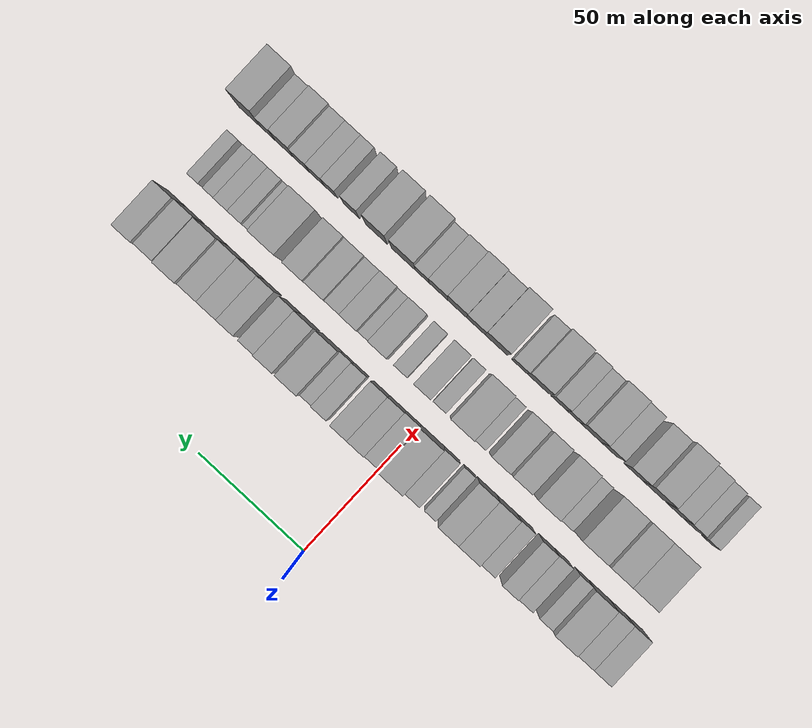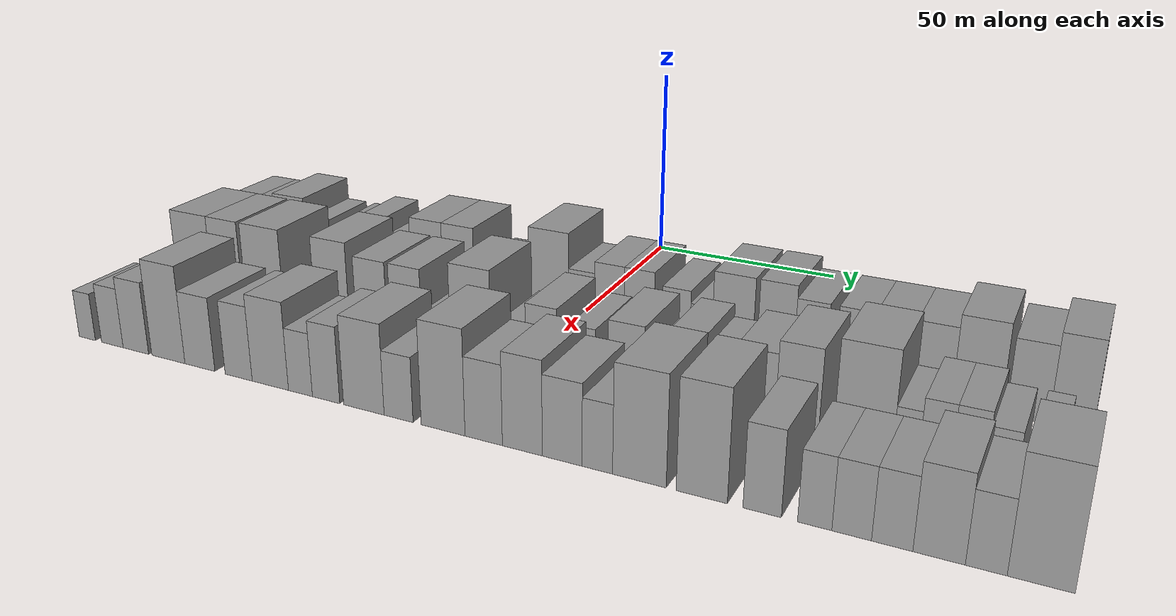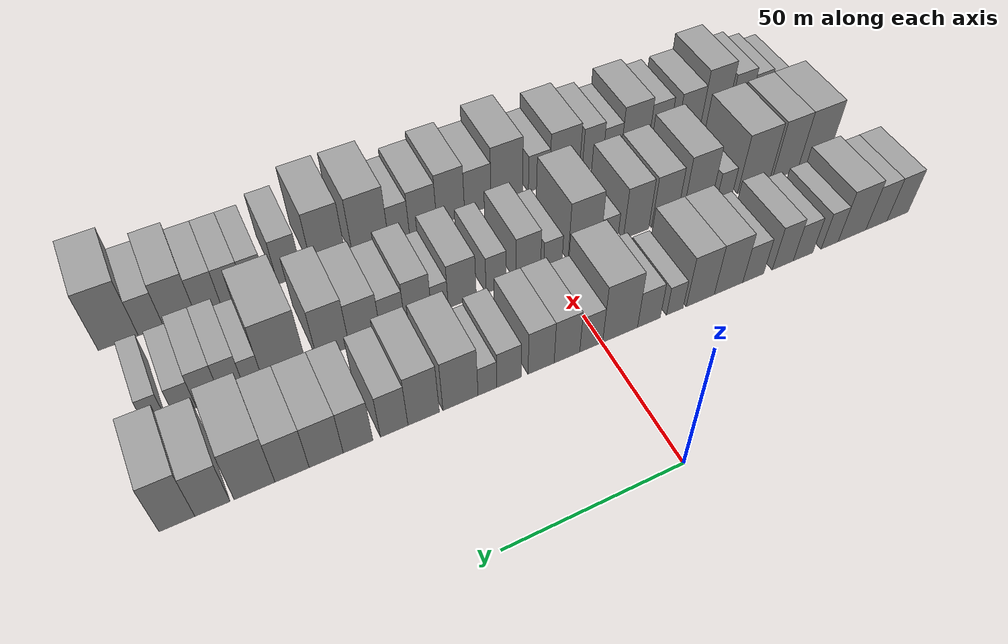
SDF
<sdf version="1.6">
 <world name="default">
  <model name="building_29">
   <static>1</static>
   <pose>50.0000 -101.1419 0 0.000000 0.000000 0.000000</pose>
   <link name="link">
    <pose>0 0 9.00 0 0 0</pose>
    <collision name="collision"><geometry><box><size>20.0000 7.9087 18.0000</size></box></geometry></collision>
    <visual name="visual">
     <cast_shadows>0</cast_shadows>
     <geometry><box><size>20.0000 7.9087 18.0000</size></box></geometry>
     <material>
      <script>
       <uri>model://grey_wall/materials/scripts</uri>
       <uri>model://grey_wall/materials/textures</uri>
       <name>vrc/grey_wall</name>
      </script>
     </material>
    </visual>
   </link>
  </model>
  <model name="building_30">
   <static>1</static>
   <pose>50.0000 -93.2247 0 0.000000 0.000000 0.000000</pose>
   <link name="link">
    <pose>0 0 9.00 0 0 0</pose>
    <collision name="collision"><geometry><box><size>20.0000 7.9257 18.0000</size></box></geometry></collision>
    <visual name="visual">
     <cast_shadows>0</cast_shadows>
     <geometry><box><size>20.0000 7.9257 18.0000</size></box></geometry>
     <material>
      <script>
       <uri>model://grey_wall/materials/scripts</uri>
       <uri>model://grey_wall/materials/textures</uri>
       <name>vrc/grey_wall</name>
      </script>
     </material>
    </visual>
   </link>
  </model>
  <model name="building_31">
   <static>1</static>
   <pose>50.0000 -84.1752 0 0.000000 0.000000 0.000000</pose>
   <link name="link">
    <pose>0 0 10.50 0 0 0</pose>
    <collision name="collision"><geometry><box><size>20.0000 10.1734 21.0000</size></box></geometry></collision>
    <visual name="visual">
     <cast_shadows>0</cast_shadows>
     <geometry><box><size>20.0000 10.1734 21.0000</size></box></geometry>
     <material>
      <script>
       <uri>model://grey_wall/materials/scripts</uri>
       <uri>model://grey_wall/materials/textures</uri>
       <name>vrc/grey_wall</name>
      </script>
     </material>
    </visual>
   </link>
  </model>
  <model name="building_32">
   <static>1</static>
   <pose>50.0000 -76.0340 0 0.000000 0.000000 0.000000</pose>
   <link name="link">
    <pose>0 0 7.50 0 0 0</pose>
    <collision name="collision"><geometry><box><size>20.0000 6.1088 15.0000</size></box></geometry></collision>
    <visual name="visual">
     <cast_shadows>0</cast_shadows>
     <geometry><box><size>20.0000 6.1088 15.0000</size></box></geometry>
     <material>
      <script>
       <uri>model://grey_wall/materials/scripts</uri>
       <uri>model://grey_wall/materials/textures</uri>
       <name>vrc/grey_wall</name>
      </script>
     </material>
    </visual>
   </link>
  </model>
  <model name="building_33">
   <static>1</static>
   <pose>50.0000 -66.5086 0 0.000000 0.000000 0.000000</pose>
   <link name="link">
    <pose>0 0 7.50 0 0 0</pose>
    <collision name="collision"><geometry><box><size>20.0000 6.9421 15.0000</size></box></geometry></collision>
    <visual name="visual">
     <cast_shadows>0</cast_shadows>
     <geometry><box><size>20.0000 6.9421 15.0000</size></box></geometry>
     <material>
      <script>
       <uri>model://grey_wall/materials/scripts</uri>
       <uri>model://grey_wall/materials/textures</uri>
       <name>vrc/grey_wall</name>
      </script>
     </material>
    </visual>
   </link>
  </model>
  <model name="building_34">
   <static>1</static>
   <pose>50.0000 -59.3887 0 0.000000 0.000000 0.000000</pose>
   <link name="link">
    <pose>0 0 9.00 0 0 0</pose>
    <collision name="collision"><geometry><box><size>20.0000 7.2976 18.0000</size></box></geometry></collision>
    <visual name="visual">
     <cast_shadows>0</cast_shadows>
     <geometry><box><size>20.0000 7.2976 18.0000</size></box></geometry>
     <material>
      <script>
       <uri>model://grey_wall/materials/scripts</uri>
       <uri>model://grey_wall/materials/textures</uri>
       <name>vrc/grey_wall</name>
      </script>
     </material>
    </visual>
   </link>
  </model>
  <model name="building_35">
   <static>1</static>
   <pose>50.0000 -49.1687 0 0.000000 0.000000 0.000000</pose>
   <link name="link">
    <pose>0 0 7.50 0 0 0</pose>
    <collision name="collision"><geometry><box><size>20.0000 7.1424 15.0000</size></box></geometry></collision>
    <visual name="visual">
     <cast_shadows>0</cast_shadows>
     <geometry><box><size>20.0000 7.1424 15.0000</size></box></geometry>
     <material>
      <script>
       <uri>model://grey_wall/materials/scripts</uri>
       <uri>model://grey_wall/materials/textures</uri>
       <name>vrc/grey_wall</name>
      </script>
     </material>
    </visual>
   </link>
  </model>
  <model name="building_36">
   <static>1</static>
   <pose>50.0000 -40.7982 0 0.000000 0.000000 0.000000</pose>
   <link name="link">
    <pose>0 0 10.50 0 0 0</pose>
    <collision name="collision"><geometry><box><size>20.0000 9.5987 21.0000</size></box></geometry></collision>
    <visual name="visual">
     <cast_shadows>0</cast_shadows>
     <geometry><box><size>20.0000 9.5987 21.0000</size></box></geometry>
     <material>
      <script>
       <uri>model://grey_wall/materials/scripts</uri>
       <uri>model://grey_wall/materials/textures</uri>
       <name>vrc/grey_wall</name>
      </script>
     </material>
    </visual>
   </link>
  </model>
  <model name="building_37">
   <static>1</static>
   <pose>50.0000 -31.3632 0 0.000000 0.000000 0.000000</pose>
   <link name="link">
    <pose>0 0 10.50 0 0 0</pose>
    <collision name="collision"><geometry><box><size>20.0000 9.2714 21.0000</size></box></geometry></collision>
    <visual name="visual">
     <cast_shadows>0</cast_shadows>
     <geometry><box><size>20.0000 9.2714 21.0000</size></box></geometry>
     <material>
      <script>
       <uri>model://grey_wall/materials/scripts</uri>
       <uri>model://grey_wall/materials/textures</uri>
       <name>vrc/grey_wall</name>
      </script>
     </material>
    </visual>
   </link>
  </model>
  <model name="building_38">
   <static>1</static>
   <pose>50.0000 -23.0225 0 0.000000 0.000000 0.000000</pose>
   <link name="link">
    <pose>0 0 6.00 0 0 0</pose>
    <collision name="collision"><geometry><box><size>20.0000 5.4099 12.0000</size></box></geometry></collision>
    <visual name="visual">
     <cast_shadows>0</cast_shadows>
     <geometry><box><size>20.0000 5.4099 12.0000</size></box></geometry>
     <material>
      <script>
       <uri>model://grey_wall/materials/scripts</uri>
       <uri>model://grey_wall/materials/textures</uri>
       <name>vrc/grey_wall</name>
      </script>
     </material>
    </visual>
   </link>
  </model>
  <model name="building_39">
   <static>1</static>
   <pose>50.0000 -14.6906 0 0.000000 0.000000 0.000000</pose>
   <link name="link">
    <pose>0 0 7.50 0 0 0</pose>
    <collision name="collision"><geometry><box><size>20.0000 7.2540 15.0000</size></box></geometry></collision>
    <visual name="visual">
     <cast_shadows>0</cast_shadows>
     <geometry><box><size>20.0000 7.2540 15.0000</size></box></geometry>
     <material>
      <script>
       <uri>model://grey_wall/materials/scripts</uri>
       <uri>model://grey_wall/materials/textures</uri>
       <name>vrc/grey_wall</name>
      </script>
     </material>
    </visual>
   </link>
  </model>
  <model name="building_40">
   <static>1</static>
   <pose>50.0000 -5.6001 0 0.000000 0.000000 0.000000</pose>
   <link name="link">
    <pose>0 0 12.00 0 0 0</pose>
    <collision name="collision"><geometry><box><size>20.0000 10.9268 24.0000</size></box></geometry></collision>
    <visual name="visual">
     <cast_shadows>0</cast_shadows>
     <geometry><box><size>20.0000 10.9268 24.0000</size></box></geometry>
     <material>
      <script>
       <uri>model://grey_wall/materials/scripts</uri>
       <uri>model://grey_wall/materials/textures</uri>
       <name>vrc/grey_wall</name>
      </script>
     </material>
    </visual>
   </link>
  </model>
  <model name="building_41">
   <static>1</static>
   <pose>50.0000 3.3759 0 0.000000 0.000000 0.000000</pose>
   <link name="link">
    <pose>0 0 7.50 0 0 0</pose>
    <collision name="collision"><geometry><box><size>20.0000 7.0253 15.0000</size></box></geometry></collision>
    <visual name="visual">
     <cast_shadows>0</cast_shadows>
     <geometry><box><size>20.0000 7.0253 15.0000</size></box></geometry>
     <material>
      <script>
       <uri>model://grey_wall/materials/scripts</uri>
       <uri>model://grey_wall/materials/textures</uri>
       <name>vrc/grey_wall</name>
      </script>
     </material>
    </visual>
   </link>
  </model>
  <model name="building_42">
   <static>1</static>
   <pose>50.0000 10.7546 0 0.000000 0.000000 0.000000</pose>
   <link name="link">
    <pose>0 0 9.00 0 0 0</pose>
    <collision name="collision"><geometry><box><size>20.0000 7.7320 18.0000</size></box></geometry></collision>
    <visual name="visual">
     <cast_shadows>0</cast_shadows>
     <geometry><box><size>20.0000 7.7320 18.0000</size></box></geometry>
     <material>
      <script>
       <uri>model://grey_wall/materials/scripts</uri>
       <uri>model://grey_wall/materials/textures</uri>
       <name>vrc/grey_wall</name>
      </script>
     </material>
    </visual>
   </link>
  </model>
  <model name="building_43">
   <static>1</static>
   <pose>50.0000 18.4982 0 0.000000 0.000000 0.000000</pose>
   <link name="link">
    <pose>0 0 9.00 0 0 0</pose>
    <collision name="collision"><geometry><box><size>20.0000 7.7552 18.0000</size></box></geometry></collision>
    <visual name="visual">
     <cast_shadows>0</cast_shadows>
     <geometry><box><size>20.0000 7.7552 18.0000</size></box></geometry>
     <material>
      <script>
       <uri>model://grey_wall/materials/scripts</uri>
       <uri>model://grey_wall/materials/textures</uri>
       <name>vrc/grey_wall</name>
      </script>
     </material>
    </visual>
   </link>
  </model>
  <model name="building_44">
   <static>1</static>
   <pose>50.0000 27.9174 0 0.000000 0.000000 0.000000</pose>
   <link name="link">
    <pose>0 0 7.50 0 0 0</pose>
    <collision name="collision"><geometry><box><size>20.0000 7.0834 15.0000</size></box></geometry></collision>
    <visual name="visual">
     <cast_shadows>0</cast_shadows>
     <geometry><box><size>20.0000 7.0834 15.0000</size></box></geometry>
     <material>
      <script>
       <uri>model://grey_wall/materials/scripts</uri>
       <uri>model://grey_wall/materials/textures</uri>
       <name>vrc/grey_wall</name>
      </script>
     </material>
    </visual>
   </link>
  </model>
  <model name="building_45">
   <static>1</static>
   <pose>50.0000 34.1626 0 0.000000 0.000000 0.000000</pose>
   <link name="link">
    <pose>0 0 6.00 0 0 0</pose>
    <collision name="collision"><geometry><box><size>20.0000 5.4071 12.0000</size></box></geometry></collision>
    <visual name="visual">
     <cast_shadows>0</cast_shadows>
     <geometry><box><size>20.0000 5.4071 12.0000</size></box></geometry>
     <material>
      <script>
       <uri>model://grey_wall/materials/scripts</uri>
       <uri>model://grey_wall/materials/textures</uri>
       <name>vrc/grey_wall</name>
      </script>
     </material>
    </visual>
   </link>
  </model>
  <model name="building_46">
   <static>1</static>
   <pose>50.0000 41.8215 0 0.000000 0.000000 0.000000</pose>
   <link name="link">
    <pose>0 0 10.50 0 0 0</pose>
    <collision name="collision"><geometry><box><size>20.0000 9.9106 21.0000</size></box></geometry></collision>
    <visual name="visual">
     <cast_shadows>0</cast_shadows>
     <geometry><box><size>20.0000 9.9106 21.0000</size></box></geometry>
     <material>
      <script>
       <uri>model://grey_wall/materials/scripts</uri>
       <uri>model://grey_wall/materials/textures</uri>
       <name>vrc/grey_wall</name>
      </script>
     </material>
    </visual>
   </link>
  </model>
  <model name="building_47">
   <static>1</static>
   <pose>50.0000 52.1036 0 0.000000 0.000000 0.000000</pose>
   <link name="link">
    <pose>0 0 10.50 0 0 0</pose>
    <collision name="collision"><geometry><box><size>20.0000 8.6536 21.0000</size></box></geometry></collision>
    <visual name="visual">
     <cast_shadows>0</cast_shadows>
     <geometry><box><size>20.0000 8.6536 21.0000</size></box></geometry>
     <material>
      <script>
       <uri>model://grey_wall/materials/scripts</uri>
       <uri>model://grey_wall/materials/textures</uri>
       <name>vrc/grey_wall</name>
      </script>
     </material>
    </visual>
   </link>
  </model>
  <model name="building_48">
   <static>1</static>
   <pose>50.0000 60.1718 0 0.000000 0.000000 0.000000</pose>
   <link name="link">
    <pose>0 0 9.00 0 0 0</pose>
    <collision name="collision"><geometry><box><size>20.0000 7.4828 18.0000</size></box></geometry></collision>
    <visual name="visual">
     <cast_shadows>0</cast_shadows>
     <geometry><box><size>20.0000 7.4828 18.0000</size></box></geometry>
     <material>
      <script>
       <uri>model://grey_wall/materials/scripts</uri>
       <uri>model://grey_wall/materials/textures</uri>
       <name>vrc/grey_wall</name>
      </script>
     </material>
    </visual>
   </link>
  </model>
  <model name="building_49">
   <static>1</static>
   <pose>50.0000 69.8449 0 0.000000 0.000000 0.000000</pose>
   <link name="link">
    <pose>0 0 9.00 0 0 0</pose>
    <collision name="collision"><geometry><box><size>20.0000 7.8635 18.0000</size></box></geometry></collision>
    <visual name="visual">
     <cast_shadows>0</cast_shadows>
     <geometry><box><size>20.0000 7.8635 18.0000</size></box></geometry>
     <material>
      <script>
       <uri>model://grey_wall/materials/scripts</uri>
       <uri>model://grey_wall/materials/textures</uri>
       <name>vrc/grey_wall</name>
      </script>
     </material>
    </visual>
   </link>
  </model>
  <model name="building_50">
   <static>1</static>
   <pose>50.0000 78.2156 0 0.000000 0.000000 0.000000</pose>
   <link name="link">
    <pose>0 0 9.00 0 0 0</pose>
    <collision name="collision"><geometry><box><size>20.0000 8.8777 18.0000</size></box></geometry></collision>
    <visual name="visual">
     <cast_shadows>0</cast_shadows>
     <geometry><box><size>20.0000 8.8777 18.0000</size></box></geometry>
     <material>
      <script>
       <uri>model://grey_wall/materials/scripts</uri>
       <uri>model://grey_wall/materials/textures</uri>
       <name>vrc/grey_wall</name>
      </script>
     </material>
    </visual>
   </link>
  </model>
  <model name="building_51">
   <static>1</static>
   <pose>50.0000 87.0065 0 0.000000 0.000000 0.000000</pose>
   <link name="link">
    <pose>0 0 9.00 0 0 0</pose>
    <collision name="collision"><geometry><box><size>20.0000 8.7040 18.0000</size></box></geometry></collision>
    <visual name="visual">
     <cast_shadows>0</cast_shadows>
     <geometry><box><size>20.0000 8.7040 18.0000</size></box></geometry>
     <material>
      <script>
       <uri>model://grey_wall/materials/scripts</uri>
       <uri>model://grey_wall/materials/textures</uri>
       <name>vrc/grey_wall</name>
      </script>
     </material>
    </visual>
   </link>
  </model>
  <model name="building_52">
   <static>1</static>
   <pose>50.0000 96.4628 0 0.000000 0.000000 0.000000</pose>
   <link name="link">
    <pose>0 0 10.50 0 0 0</pose>
    <collision name="collision"><geometry><box><size>20.0000 10.2087 21.0000</size></box></geometry></collision>
    <visual name="visual">
     <cast_shadows>0</cast_shadows>
     <geometry><box><size>20.0000 10.2087 21.0000</size></box></geometry>
     <material>
      <script>
       <uri>model://grey_wall/materials/scripts</uri>
       <uri>model://grey_wall/materials/textures</uri>
       <name>vrc/grey_wall</name>
      </script>
     </material>
    </visual>
   </link>
  </model>
  <model name="building_53">
   <static>1</static>
   <pose>50.0000 106.8379 0 0.000000 0.000000 0.000000</pose>
   <link name="link">
    <pose>0 0 9.00 0 0 0</pose>
    <collision name="collision"><geometry><box><size>20.0000 8.5415 18.0000</size></box></geometry></collision>
    <visual name="visual">
     <cast_shadows>0</cast_shadows>
     <geometry><box><size>20.0000 8.5415 18.0000</size></box></geometry>
     <material>
      <script>
       <uri>model://grey_wall/materials/scripts</uri>
       <uri>model://grey_wall/materials/textures</uri>
       <name>vrc/grey_wall</name>
      </script>
     </material>
    </visual>
   </link>
  </model>
  <model name="building_54">
   <static>1</static>
   <pose>50.0000 115.3977 0 0.000000 0.000000 0.000000</pose>
   <link name="link">
    <pose>0 0 10.50 0 0 0</pose>
    <collision name="collision"><geometry><box><size>20.0000 8.5783 21.0000</size></box></geometry></collision>
    <visual name="visual">
     <cast_shadows>0</cast_shadows>
     <geometry><box><size>20.0000 8.5783 21.0000</size></box></geometry>
     <material>
      <script>
       <uri>model://grey_wall/materials/scripts</uri>
       <uri>model://grey_wall/materials/textures</uri>
       <name>vrc/grey_wall</name>
      </script>
     </material>
    </visual>
   </link>
  </model>
  <model name="building_103">
   <static>1</static>
   <pose>79.0000 -92.2201 0 0.000000 0.000000 0.000000</pose>
   <link name="link">
    <pose>0 0 12.00 0 0 0</pose>
    <collision name="collision"><geometry><box><size>20.0000 11.5859 24.0000</size></box></geometry></collision>
    <visual name="visual">
     <cast_shadows>0</cast_shadows>
     <geometry><box><size>20.0000 11.5859 24.0000</size></box></geometry>
     <material>
      <script>
       <uri>model://grey_wall/materials/scripts</uri>
       <uri>model://grey_wall/materials/textures</uri>
       <name>vrc/grey_wall</name>
      </script>
     </material>
    </visual>
   </link>
  </model>
  <model name="building_104">
   <static>1</static>
   <pose>79.0000 -81.6026 0 0.000000 0.000000 0.000000</pose>
   <link name="link">
    <pose>0 0 12.00 0 0 0</pose>
    <collision name="collision"><geometry><box><size>20.0000 9.6491 24.0000</size></box></geometry></collision>
    <visual name="visual">
     <cast_shadows>0</cast_shadows>
     <geometry><box><size>20.0000 9.6491 24.0000</size></box></geometry>
     <material>
      <script>
       <uri>model://grey_wall/materials/scripts</uri>
       <uri>model://grey_wall/materials/textures</uri>
       <name>vrc/grey_wall</name>
      </script>
     </material>
    </visual>
   </link>
  </model>
  <model name="building_105">
   <static>1</static>
   <pose>79.0000 -69.8841 0 0.000000 0.000000 0.000000</pose>
   <link name="link">
    <pose>0 0 12.00 0 0 0</pose>
    <collision name="collision"><geometry><box><size>20.0000 11.7879 24.0000</size></box></geometry></collision>
    <visual name="visual">
     <cast_shadows>0</cast_shadows>
     <geometry><box><size>20.0000 11.7879 24.0000</size></box></geometry>
     <material>
      <script>
       <uri>model://grey_wall/materials/scripts</uri>
       <uri>model://grey_wall/materials/textures</uri>
       <name>vrc/grey_wall</name>
      </script>
     </material>
    </visual>
   </link>
  </model>
  <model name="building_106">
   <static>1</static>
   <pose>79.0000 -59.1848 0 0.000000 0.000000 0.000000</pose>
   <link name="link">
    <pose>0 0 6.00 0 0 0</pose>
    <collision name="collision"><geometry><box><size>20.0000 5.6108 12.0000</size></box></geometry></collision>
    <visual name="visual">
     <cast_shadows>0</cast_shadows>
     <geometry><box><size>20.0000 5.6108 12.0000</size></box></geometry>
     <material>
      <script>
       <uri>model://grey_wall/materials/scripts</uri>
       <uri>model://grey_wall/materials/textures</uri>
       <name>vrc/grey_wall</name>
      </script>
     </material>
    </visual>
   </link>
  </model>
  <model name="building_107">
   <static>1</static>
   <pose>79.0000 -49.3577 0 0.000000 0.000000 0.000000</pose>
   <link name="link">
    <pose>0 0 12.00 0 0 0</pose>
    <collision name="collision"><geometry><box><size>20.0000 10.0433 24.0000</size></box></geometry></collision>
    <visual name="visual">
     <cast_shadows>0</cast_shadows>
     <geometry><box><size>20.0000 10.0433 24.0000</size></box></geometry>
     <material>
      <script>
       <uri>model://grey_wall/materials/scripts</uri>
       <uri>model://grey_wall/materials/textures</uri>
       <name>vrc/grey_wall</name>
      </script>
     </material>
    </visual>
   </link>
  </model>
  <model name="building_108">
   <static>1</static>
   <pose>79.0000 -37.9018 0 0.000000 0.000000 0.000000</pose>
   <link name="link">
    <pose>0 0 10.50 0 0 0</pose>
    <collision name="collision"><geometry><box><size>20.0000 8.8684 21.0000</size></box></geometry></collision>
    <visual name="visual">
     <cast_shadows>0</cast_shadows>
     <geometry><box><size>20.0000 8.8684 21.0000</size></box></geometry>
     <material>
      <script>
       <uri>model://grey_wall/materials/scripts</uri>
       <uri>model://grey_wall/materials/textures</uri>
       <name>vrc/grey_wall</name>
      </script>
     </material>
    </visual>
   </link>
  </model>
  <model name="building_109">
   <static>1</static>
   <pose>79.0000 -28.1540 0 0.000000 0.000000 0.000000</pose>
   <link name="link">
    <pose>0 0 10.50 0 0 0</pose>
    <collision name="collision"><geometry><box><size>20.0000 8.6272 21.0000</size></box></geometry></collision>
    <visual name="visual">
     <cast_shadows>0</cast_shadows>
     <geometry><box><size>20.0000 8.6272 21.0000</size></box></geometry>
     <material>
      <script>
       <uri>model://grey_wall/materials/scripts</uri>
       <uri>model://grey_wall/materials/textures</uri>
       <name>vrc/grey_wall</name>
      </script>
     </material>
    </visual>
   </link>
  </model>
  <model name="building_110">
   <static>1</static>
   <pose>79.0000 -18.9715 0 0.000000 0.000000 0.000000</pose>
   <link name="link">
    <pose>0 0 6.00 0 0 0</pose>
    <collision name="collision"><geometry><box><size>20.0000 5.7377 12.0000</size></box></geometry></collision>
    <visual name="visual">
     <cast_shadows>0</cast_shadows>
     <geometry><box><size>20.0000 5.7377 12.0000</size></box></geometry>
     <material>
      <script>
       <uri>model://grey_wall/materials/scripts</uri>
       <uri>model://grey_wall/materials/textures</uri>
       <name>vrc/grey_wall</name>
      </script>
     </material>
    </visual>
   </link>
  </model>
  <model name="building_111">
   <static>1</static>
   <pose>79.0000 -10.7910 0 0.000000 0.000000 0.000000</pose>
   <link name="link">
    <pose>0 0 12.00 0 0 0</pose>
    <collision name="collision"><geometry><box><size>20.0000 10.6233 24.0000</size></box></geometry></collision>
    <visual name="visual">
     <cast_shadows>0</cast_shadows>
     <geometry><box><size>20.0000 10.6233 24.0000</size></box></geometry>
     <material>
      <script>
       <uri>model://grey_wall/materials/scripts</uri>
       <uri>model://grey_wall/materials/textures</uri>
       <name>vrc/grey_wall</name>
      </script>
     </material>
    </visual>
   </link>
  </model>
  <model name="building_112">
   <static>1</static>
   <pose>79.0000 -0.5046 0 0.000000 0.000000 0.000000</pose>
   <link name="link">
    <pose>0 0 6.00 0 0 0</pose>
    <collision name="collision"><geometry><box><size>20.0000 5.9496 12.0000</size></box></geometry></collision>
    <visual name="visual">
     <cast_shadows>0</cast_shadows>
     <geometry><box><size>20.0000 5.9496 12.0000</size></box></geometry>
     <material>
      <script>
       <uri>model://grey_wall/materials/scripts</uri>
       <uri>model://grey_wall/materials/textures</uri>
       <name>vrc/grey_wall</name>
      </script>
     </material>
    </visual>
   </link>
  </model>
  <model name="building_113">
   <static>1</static>
   <pose>79.0000 7.3682 0 0.000000 0.000000 0.000000</pose>
   <link name="link">
    <pose>0 0 9.00 0 0 0</pose>
    <collision name="collision"><geometry><box><size>20.0000 7.7960 18.0000</size></box></geometry></collision>
    <visual name="visual">
     <cast_shadows>0</cast_shadows>
     <geometry><box><size>20.0000 7.7960 18.0000</size></box></geometry>
     <material>
      <script>
       <uri>model://grey_wall/materials/scripts</uri>
       <uri>model://grey_wall/materials/textures</uri>
       <name>vrc/grey_wall</name>
      </script>
     </material>
    </visual>
   </link>
  </model>
  <model name="building_114">
   <static>1</static>
   <pose>79.0000 17.4192 0 0.000000 0.000000 0.000000</pose>
   <link name="link">
    <pose>0 0 7.50 0 0 0</pose>
    <collision name="collision"><geometry><box><size>20.0000 6.3060 15.0000</size></box></geometry></collision>
    <visual name="visual">
     <cast_shadows>0</cast_shadows>
     <geometry><box><size>20.0000 6.3060 15.0000</size></box></geometry>
     <material>
      <script>
       <uri>model://grey_wall/materials/scripts</uri>
       <uri>model://grey_wall/materials/textures</uri>
       <name>vrc/grey_wall</name>
      </script>
     </material>
    </visual>
   </link>
  </model>
  <model name="building_115">
   <static>1</static>
   <pose>79.0000 27.8315 0 0.000000 0.000000 0.000000</pose>
   <link name="link">
    <pose>0 0 9.00 0 0 0</pose>
    <collision name="collision"><geometry><box><size>20.0000 8.5186 18.0000</size></box></geometry></collision>
    <visual name="visual">
     <cast_shadows>0</cast_shadows>
     <geometry><box><size>20.0000 8.5186 18.0000</size></box></geometry>
     <material>
      <script>
       <uri>model://grey_wall/materials/scripts</uri>
       <uri>model://grey_wall/materials/textures</uri>
       <name>vrc/grey_wall</name>
      </script>
     </material>
    </visual>
   </link>
  </model>
  <model name="building_116">
   <static>1</static>
   <pose>79.0000 34.6011 0 0.000000 0.000000 0.000000</pose>
   <link name="link">
    <pose>0 0 6.00 0 0 0</pose>
    <collision name="collision"><geometry><box><size>20.0000 5.0207 12.0000</size></box></geometry></collision>
    <visual name="visual">
     <cast_shadows>0</cast_shadows>
     <geometry><box><size>20.0000 5.0207 12.0000</size></box></geometry>
     <material>
      <script>
       <uri>model://grey_wall/materials/scripts</uri>
       <uri>model://grey_wall/materials/textures</uri>
       <name>vrc/grey_wall</name>
      </script>
     </material>
    </visual>
   </link>
  </model>
  <model name="building_117">
   <static>1</static>
   <pose>79.0000 41.0628 0 0.000000 0.000000 0.000000</pose>
   <link name="link">
    <pose>0 0 9.00 0 0 0</pose>
    <collision name="collision"><geometry><box><size>20.0000 7.9028 18.0000</size></box></geometry></collision>
    <visual name="visual">
     <cast_shadows>0</cast_shadows>
     <geometry><box><size>20.0000 7.9028 18.0000</size></box></geometry>
     <material>
      <script>
       <uri>model://grey_wall/materials/scripts</uri>
       <uri>model://grey_wall/materials/textures</uri>
       <name>vrc/grey_wall</name>
      </script>
     </material>
    </visual>
   </link>
  </model>
  <model name="building_118">
   <static>1</static>
   <pose>79.0000 48.5735 0 0.000000 0.000000 0.000000</pose>
   <link name="link">
    <pose>0 0 7.50 0 0 0</pose>
    <collision name="collision"><geometry><box><size>20.0000 7.1185 15.0000</size></box></geometry></collision>
    <visual name="visual">
     <cast_shadows>0</cast_shadows>
     <geometry><box><size>20.0000 7.1185 15.0000</size></box></geometry>
     <material>
      <script>
       <uri>model://grey_wall/materials/scripts</uri>
       <uri>model://grey_wall/materials/textures</uri>
       <name>vrc/grey_wall</name>
      </script>
     </material>
    </visual>
   </link>
  </model>
  <model name="building_119">
   <static>1</static>
   <pose>79.0000 56.6145 0 0.000000 0.000000 0.000000</pose>
   <link name="link">
    <pose>0 0 9.00 0 0 0</pose>
    <collision name="collision"><geometry><box><size>20.0000 8.9637 18.0000</size></box></geometry></collision>
    <visual name="visual">
     <cast_shadows>0</cast_shadows>
     <geometry><box><size>20.0000 8.9637 18.0000</size></box></geometry>
     <material>
      <script>
       <uri>model://grey_wall/materials/scripts</uri>
       <uri>model://grey_wall/materials/textures</uri>
       <name>vrc/grey_wall</name>
      </script>
     </material>
    </visual>
   </link>
  </model>
  <model name="building_120">
   <static>1</static>
   <pose>79.0000 65.6613 0 0.000000 0.000000 0.000000</pose>
   <link name="link">
    <pose>0 0 10.50 0 0 0</pose>
    <collision name="collision"><geometry><box><size>20.0000 9.1299 21.0000</size></box></geometry></collision>
    <visual name="visual">
     <cast_shadows>0</cast_shadows>
     <geometry><box><size>20.0000 9.1299 21.0000</size></box></geometry>
     <material>
      <script>
       <uri>model://grey_wall/materials/scripts</uri>
       <uri>model://grey_wall/materials/textures</uri>
       <name>vrc/grey_wall</name>
      </script>
     </material>
    </visual>
   </link>
  </model>
  <model name="building_121">
   <static>1</static>
   <pose>79.0000 79.1402 0 0.000000 0.000000 0.000000</pose>
   <link name="link">
    <pose>0 0 12.00 0 0 0</pose>
    <collision name="collision"><geometry><box><size>20.0000 11.8278 24.0000</size></box></geometry></collision>
    <visual name="visual">
     <cast_shadows>0</cast_shadows>
     <geometry><box><size>20.0000 11.8278 24.0000</size></box></geometry>
     <material>
      <script>
       <uri>model://grey_wall/materials/scripts</uri>
       <uri>model://grey_wall/materials/textures</uri>
       <name>vrc/grey_wall</name>
      </script>
     </material>
    </visual>
   </link>
  </model>
  <model name="building_122">
   <static>1</static>
   <pose>79.0000 87.5717 0 0.000000 0.000000 0.000000</pose>
   <link name="link">
    <pose>0 0 6.00 0 0 0</pose>
    <collision name="collision"><geometry><box><size>20.0000 5.0352 12.0000</size></box></geometry></collision>
    <visual name="visual">
     <cast_shadows>0</cast_shadows>
     <geometry><box><size>20.0000 5.0352 12.0000</size></box></geometry>
     <material>
      <script>
       <uri>model://grey_wall/materials/scripts</uri>
       <uri>model://grey_wall/materials/textures</uri>
       <name>vrc/grey_wall</name>
      </script>
     </material>
    </visual>
   </link>
  </model>
  <model name="building_123">
   <static>1</static>
   <pose>79.0000 93.2001 0 0.000000 0.000000 0.000000</pose>
   <link name="link">
    <pose>0 0 7.50 0 0 0</pose>
    <collision name="collision"><geometry><box><size>20.0000 6.2215 15.0000</size></box></geometry></collision>
    <visual name="visual">
     <cast_shadows>0</cast_shadows>
     <geometry><box><size>20.0000 6.2215 15.0000</size></box></geometry>
     <material>
      <script>
       <uri>model://grey_wall/materials/scripts</uri>
       <uri>model://grey_wall/materials/textures</uri>
       <name>vrc/grey_wall</name>
      </script>
     </material>
    </visual>
   </link>
  </model>
  <model name="building_124">
   <static>1</static>
   <pose>79.0000 99.5261 0 0.000000 0.000000 0.000000</pose>
   <link name="link">
    <pose>0 0 7.50 0 0 0</pose>
    <collision name="collision"><geometry><box><size>20.0000 6.4305 15.0000</size></box></geometry></collision>
    <visual name="visual">
     <cast_shadows>0</cast_shadows>
     <geometry><box><size>20.0000 6.4305 15.0000</size></box></geometry>
     <material>
      <script>
       <uri>model://grey_wall/materials/scripts</uri>
       <uri>model://grey_wall/materials/textures</uri>
       <name>vrc/grey_wall</name>
      </script>
     </material>
    </visual>
   </link>
  </model>
  <model name="building_125">
   <static>1</static>
   <pose>79.0000 105.6167 0 0.000000 0.000000 0.000000</pose>
   <link name="link">
    <pose>0 0 6.00 0 0 0</pose>
    <collision name="collision"><geometry><box><size>20.0000 5.7505 12.0000</size></box></geometry></collision>
    <visual name="visual">
     <cast_shadows>0</cast_shadows>
     <geometry><box><size>20.0000 5.7505 12.0000</size></box></geometry>
     <material>
      <script>
       <uri>model://grey_wall/materials/scripts</uri>
       <uri>model://grey_wall/materials/textures</uri>
       <name>vrc/grey_wall</name>
      </script>
     </material>
    </visual>
   </link>
  </model>
  <model name="building_126">
   <static>1</static>
   <pose>79.0000 113.0846 0 0.000000 0.000000 0.000000</pose>
   <link name="link">
    <pose>0 0 6.00 0 0 0</pose>
    <collision name="collision"><geometry><box><size>20.0000 5.1854 12.0000</size></box></geometry></collision>
    <visual name="visual">
     <cast_shadows>0</cast_shadows>
     <geometry><box><size>20.0000 5.1854 12.0000</size></box></geometry>
     <material>
      <script>
       <uri>model://grey_wall/materials/scripts</uri>
       <uri>model://grey_wall/materials/textures</uri>
       <name>vrc/grey_wall</name>
      </script>
     </material>
    </visual>
   </link>
  </model>
  <model name="building_174">
   <static>1</static>
   <pose>108.0000 -100.1642 0 0.000000 0.000000 0.000000</pose>
   <link name="link">
    <pose>0 0 6.00 0 0 0</pose>
    <collision name="collision"><geometry><box><size>20.0000 5.2600 12.0000</size></box></geometry></collision>
    <visual name="visual">
     <cast_shadows>0</cast_shadows>
     <geometry><box><size>20.0000 5.2600 12.0000</size></box></geometry>
     <material>
      <script>
       <uri>model://grey_wall/materials/scripts</uri>
       <uri>model://grey_wall/materials/textures</uri>
       <name>vrc/grey_wall</name>
      </script>
     </material>
    </visual>
   </link>
  </model>
  <model name="building_175">
   <static>1</static>
   <pose>108.0000 -92.0912 0 0.000000 0.000000 0.000000</pose>
   <link name="link">
    <pose>0 0 7.50 0 0 0</pose>
    <collision name="collision"><geometry><box><size>20.0000 6.8860 15.0000</size></box></geometry></collision>
    <visual name="visual">
     <cast_shadows>0</cast_shadows>
     <geometry><box><size>20.0000 6.8860 15.0000</size></box></geometry>
     <material>
      <script>
       <uri>model://grey_wall/materials/scripts</uri>
       <uri>model://grey_wall/materials/textures</uri>
       <name>vrc/grey_wall</name>
      </script>
     </material>
    </visual>
   </link>
  </model>
  <model name="building_176">
   <static>1</static>
   <pose>108.0000 -84.6693 0 0.000000 0.000000 0.000000</pose>
   <link name="link">
    <pose>0 0 9.00 0 0 0</pose>
    <collision name="collision"><geometry><box><size>20.0000 7.9579 18.0000</size></box></geometry></collision>
    <visual name="visual">
     <cast_shadows>0</cast_shadows>
     <geometry><box><size>20.0000 7.9579 18.0000</size></box></geometry>
     <material>
      <script>
       <uri>model://grey_wall/materials/scripts</uri>
       <uri>model://grey_wall/materials/textures</uri>
       <name>vrc/grey_wall</name>
      </script>
     </material>
    </visual>
   </link>
  </model>
  <model name="building_177">
   <static>1</static>
   <pose>108.0000 -74.6652 0 0.000000 0.000000 0.000000</pose>
   <link name="link">
    <pose>0 0 12.00 0 0 0</pose>
    <collision name="collision"><geometry><box><size>20.0000 10.0502 24.0000</size></box></geometry></collision>
    <visual name="visual">
     <cast_shadows>0</cast_shadows>
     <geometry><box><size>20.0000 10.0502 24.0000</size></box></geometry>
     <material>
      <script>
       <uri>model://grey_wall/materials/scripts</uri>
       <uri>model://grey_wall/materials/textures</uri>
       <name>vrc/grey_wall</name>
      </script>
     </material>
    </visual>
   </link>
  </model>
  <model name="building_178">
   <static>1</static>
   <pose>108.0000 -65.2248 0 0.000000 0.000000 0.000000</pose>
   <link name="link">
    <pose>0 0 9.00 0 0 0</pose>
    <collision name="collision"><geometry><box><size>20.0000 8.8305 18.0000</size></box></geometry></collision>
    <visual name="visual">
     <cast_shadows>0</cast_shadows>
     <geometry><box><size>20.0000 8.8305 18.0000</size></box></geometry>
     <material>
      <script>
       <uri>model://grey_wall/materials/scripts</uri>
       <uri>model://grey_wall/materials/textures</uri>
       <name>vrc/grey_wall</name>
      </script>
     </material>
    </visual>
   </link>
  </model>
  <model name="building_179">
   <static>1</static>
   <pose>108.0000 -53.9520 0 0.000000 0.000000 0.000000</pose>
   <link name="link">
    <pose>0 0 9.00 0 0 0</pose>
    <collision name="collision"><geometry><box><size>20.0000 7.7152 18.0000</size></box></geometry></collision>
    <visual name="visual">
     <cast_shadows>0</cast_shadows>
     <geometry><box><size>20.0000 7.7152 18.0000</size></box></geometry>
     <material>
      <script>
       <uri>model://grey_wall/materials/scripts</uri>
       <uri>model://grey_wall/materials/textures</uri>
       <name>vrc/grey_wall</name>
      </script>
     </material>
    </visual>
   </link>
  </model>
  <model name="building_180">
   <static>1</static>
   <pose>108.0000 -45.0538 0 0.000000 0.000000 0.000000</pose>
   <link name="link">
    <pose>0 0 10.50 0 0 0</pose>
    <collision name="collision"><geometry><box><size>20.0000 10.0811 21.0000</size></box></geometry></collision>
    <visual name="visual">
     <cast_shadows>0</cast_shadows>
     <geometry><box><size>20.0000 10.0811 21.0000</size></box></geometry>
     <material>
      <script>
       <uri>model://grey_wall/materials/scripts</uri>
       <uri>model://grey_wall/materials/textures</uri>
       <name>vrc/grey_wall</name>
      </script>
     </material>
    </visual>
   </link>
  </model>
  <model name="building_181">
   <static>1</static>
   <pose>108.0000 -36.7760 0 0.000000 0.000000 0.000000</pose>
   <link name="link">
    <pose>0 0 7.50 0 0 0</pose>
    <collision name="collision"><geometry><box><size>20.0000 6.4746 15.0000</size></box></geometry></collision>
    <visual name="visual">
     <cast_shadows>0</cast_shadows>
     <geometry><box><size>20.0000 6.4746 15.0000</size></box></geometry>
     <material>
      <script>
       <uri>model://grey_wall/materials/scripts</uri>
       <uri>model://grey_wall/materials/textures</uri>
       <name>vrc/grey_wall</name>
      </script>
     </material>
    </visual>
   </link>
  </model>
  <model name="building_182">
   <static>1</static>
   <pose>108.0000 -29.9127 0 0.000000 0.000000 0.000000</pose>
   <link name="link">
    <pose>0 0 9.00 0 0 0</pose>
    <collision name="collision"><geometry><box><size>20.0000 7.2519 18.0000</size></box></geometry></collision>
    <visual name="visual">
     <cast_shadows>0</cast_shadows>
     <geometry><box><size>20.0000 7.2519 18.0000</size></box></geometry>
     <material>
      <script>
       <uri>model://grey_wall/materials/scripts</uri>
       <uri>model://grey_wall/materials/textures</uri>
       <name>vrc/grey_wall</name>
      </script>
     </material>
    </visual>
   </link>
  </model>
  <model name="building_183">
   <static>1</static>
   <pose>108.0000 -20.0828 0 0.000000 0.000000 0.000000</pose>
   <link name="link">
    <pose>0 0 10.50 0 0 0</pose>
    <collision name="collision"><geometry><box><size>20.0000 10.4078 21.0000</size></box></geometry></collision>
    <visual name="visual">
     <cast_shadows>0</cast_shadows>
     <geometry><box><size>20.0000 10.4078 21.0000</size></box></geometry>
     <material>
      <script>
       <uri>model://grey_wall/materials/scripts</uri>
       <uri>model://grey_wall/materials/textures</uri>
       <name>vrc/grey_wall</name>
      </script>
     </material>
    </visual>
   </link>
  </model>
  <model name="building_184">
   <static>1</static>
   <pose>108.0000 -11.2597 0 0.000000 0.000000 0.000000</pose>
   <link name="link">
    <pose>0 0 7.50 0 0 0</pose>
    <collision name="collision"><geometry><box><size>20.0000 7.2385 15.0000</size></box></geometry></collision>
    <visual name="visual">
     <cast_shadows>0</cast_shadows>
     <geometry><box><size>20.0000 7.2385 15.0000</size></box></geometry>
     <material>
      <script>
       <uri>model://grey_wall/materials/scripts</uri>
       <uri>model://grey_wall/materials/textures</uri>
       <name>vrc/grey_wall</name>
      </script>
     </material>
    </visual>
   </link>
  </model>
  <model name="building_185">
   <static>1</static>
   <pose>108.0000 -0.3633 0 0.000000 0.000000 0.000000</pose>
   <link name="link">
    <pose>0 0 12.00 0 0 0</pose>
    <collision name="collision"><geometry><box><size>20.0000 10.5542 24.0000</size></box></geometry></collision>
    <visual name="visual">
     <cast_shadows>0</cast_shadows>
     <geometry><box><size>20.0000 10.5542 24.0000</size></box></geometry>
     <material>
      <script>
       <uri>model://grey_wall/materials/scripts</uri>
       <uri>model://grey_wall/materials/textures</uri>
       <name>vrc/grey_wall</name>
      </script>
     </material>
    </visual>
   </link>
  </model>
  <model name="building_186">
   <static>1</static>
   <pose>108.0000 9.2709 0 0.000000 0.000000 0.000000</pose>
   <link name="link">
    <pose>0 0 9.00 0 0 0</pose>
    <collision name="collision"><geometry><box><size>20.0000 8.7142 18.0000</size></box></geometry></collision>
    <visual name="visual">
     <cast_shadows>0</cast_shadows>
     <geometry><box><size>20.0000 8.7142 18.0000</size></box></geometry>
     <material>
      <script>
       <uri>model://grey_wall/materials/scripts</uri>
       <uri>model://grey_wall/materials/textures</uri>
       <name>vrc/grey_wall</name>
      </script>
     </material>
    </visual>
   </link>
  </model>
  <model name="building_187">
   <static>1</static>
   <pose>108.0000 18.1432 0 0.000000 0.000000 0.000000</pose>
   <link name="link">
    <pose>0 0 10.50 0 0 0</pose>
    <collision name="collision"><geometry><box><size>20.0000 9.0304 21.0000</size></box></geometry></collision>
    <visual name="visual">
     <cast_shadows>0</cast_shadows>
     <geometry><box><size>20.0000 9.0304 21.0000</size></box></geometry>
     <material>
      <script>
       <uri>model://grey_wall/materials/scripts</uri>
       <uri>model://grey_wall/materials/textures</uri>
       <name>vrc/grey_wall</name>
      </script>
     </material>
    </visual>
   </link>
  </model>
  <model name="building_188">
   <static>1</static>
   <pose>108.0000 27.0193 0 0.000000 0.000000 0.000000</pose>
   <link name="link">
    <pose>0 0 9.00 0 0 0</pose>
    <collision name="collision"><geometry><box><size>20.0000 8.7217 18.0000</size></box></geometry></collision>
    <visual name="visual">
     <cast_shadows>0</cast_shadows>
     <geometry><box><size>20.0000 8.7217 18.0000</size></box></geometry>
     <material>
      <script>
       <uri>model://grey_wall/materials/scripts</uri>
       <uri>model://grey_wall/materials/textures</uri>
       <name>vrc/grey_wall</name>
      </script>
     </material>
    </visual>
   </link>
  </model>
  <model name="building_189">
   <static>1</static>
   <pose>108.0000 34.6457 0 0.000000 0.000000 0.000000</pose>
   <link name="link">
    <pose>0 0 7.50 0 0 0</pose>
    <collision name="collision"><geometry><box><size>20.0000 6.5312 15.0000</size></box></geometry></collision>
    <visual name="visual">
     <cast_shadows>0</cast_shadows>
     <geometry><box><size>20.0000 6.5312 15.0000</size></box></geometry>
     <material>
      <script>
       <uri>model://grey_wall/materials/scripts</uri>
       <uri>model://grey_wall/materials/textures</uri>
       <name>vrc/grey_wall</name>
      </script>
     </material>
    </visual>
   </link>
  </model>
  <model name="building_190">
   <static>1</static>
   <pose>108.0000 43.4810 0 0.000000 0.000000 0.000000</pose>
   <link name="link">
    <pose>0 0 12.00 0 0 0</pose>
    <collision name="collision"><geometry><box><size>20.0000 11.1395 24.0000</size></box></geometry></collision>
    <visual name="visual">
     <cast_shadows>0</cast_shadows>
     <geometry><box><size>20.0000 11.1395 24.0000</size></box></geometry>
     <material>
      <script>
       <uri>model://grey_wall/materials/scripts</uri>
       <uri>model://grey_wall/materials/textures</uri>
       <name>vrc/grey_wall</name>
      </script>
     </material>
    </visual>
   </link>
  </model>
  <model name="building_191">
   <static>1</static>
   <pose>108.0000 56.1351 0 0.000000 0.000000 0.000000</pose>
   <link name="link">
    <pose>0 0 12.00 0 0 0</pose>
    <collision name="collision"><geometry><box><size>20.0000 10.1688 24.0000</size></box></geometry></collision>
    <visual name="visual">
     <cast_shadows>0</cast_shadows>
     <geometry><box><size>20.0000 10.1688 24.0000</size></box></geometry>
     <material>
      <script>
       <uri>model://grey_wall/materials/scripts</uri>
       <uri>model://grey_wall/materials/textures</uri>
       <name>vrc/grey_wall</name>
      </script>
     </material>
    </visual>
   </link>
  </model>
  <model name="building_192">
   <static>1</static>
   <pose>108.0000 67.8744 0 0.000000 0.000000 0.000000</pose>
   <link name="link">
    <pose>0 0 9.00 0 0 0</pose>
    <collision name="collision"><geometry><box><size>20.0000 7.3099 18.0000</size></box></geometry></collision>
    <visual name="visual">
     <cast_shadows>0</cast_shadows>
     <geometry><box><size>20.0000 7.3099 18.0000</size></box></geometry>
     <material>
      <script>
       <uri>model://grey_wall/materials/scripts</uri>
       <uri>model://grey_wall/materials/textures</uri>
       <name>vrc/grey_wall</name>
      </script>
     </material>
    </visual>
   </link>
  </model>
  <model name="building_193">
   <static>1</static>
   <pose>108.0000 77.6681 0 0.000000 0.000000 0.000000</pose>
   <link name="link">
    <pose>0 0 7.50 0 0 0</pose>
    <collision name="collision"><geometry><box><size>20.0000 6.2776 15.0000</size></box></geometry></collision>
    <visual name="visual">
     <cast_shadows>0</cast_shadows>
     <geometry><box><size>20.0000 6.2776 15.0000</size></box></geometry>
     <material>
      <script>
       <uri>model://grey_wall/materials/scripts</uri>
       <uri>model://grey_wall/materials/textures</uri>
       <name>vrc/grey_wall</name>
      </script>
     </material>
    </visual>
   </link>
  </model>
  <model name="building_194">
   <static>1</static>
   <pose>108.0000 84.3473 0 0.000000 0.000000 0.000000</pose>
   <link name="link">
    <pose>0 0 7.50 0 0 0</pose>
    <collision name="collision"><geometry><box><size>20.0000 7.0807 15.0000</size></box></geometry></collision>
    <visual name="visual">
     <cast_shadows>0</cast_shadows>
     <geometry><box><size>20.0000 7.0807 15.0000</size></box></geometry>
     <material>
      <script>
       <uri>model://grey_wall/materials/scripts</uri>
       <uri>model://grey_wall/materials/textures</uri>
       <name>vrc/grey_wall</name>
      </script>
     </material>
    </visual>
   </link>
  </model>
  <model name="building_195">
   <static>1</static>
   <pose>108.0000 91.4745 0 0.000000 0.000000 0.000000</pose>
   <link name="link">
    <pose>0 0 7.50 0 0 0</pose>
    <collision name="collision"><geometry><box><size>20.0000 7.1737 15.0000</size></box></geometry></collision>
    <visual name="visual">
     <cast_shadows>0</cast_shadows>
     <geometry><box><size>20.0000 7.1737 15.0000</size></box></geometry>
     <material>
      <script>
       <uri>model://grey_wall/materials/scripts</uri>
       <uri>model://grey_wall/materials/textures</uri>
       <name>vrc/grey_wall</name>
      </script>
     </material>
    </visual>
   </link>
  </model>
  <model name="building_196">
   <static>1</static>
   <pose>108.0000 99.4772 0 0.000000 0.000000 0.000000</pose>
   <link name="link">
    <pose>0 0 9.00 0 0 0</pose>
    <collision name="collision"><geometry><box><size>20.0000 8.8316 18.0000</size></box></geometry></collision>
    <visual name="visual">
     <cast_shadows>0</cast_shadows>
     <geometry><box><size>20.0000 8.8316 18.0000</size></box></geometry>
     <material>
      <script>
       <uri>model://grey_wall/materials/scripts</uri>
       <uri>model://grey_wall/materials/textures</uri>
       <name>vrc/grey_wall</name>
      </script>
     </material>
    </visual>
   </link>
  </model>
  <model name="building_197">
   <static>1</static>
   <pose>108.0000 107.3075 0 0.000000 0.000000 0.000000</pose>
   <link name="link">
    <pose>0 0 7.50 0 0 0</pose>
    <collision name="collision"><geometry><box><size>20.0000 6.8290 15.0000</size></box></geometry></collision>
    <visual name="visual">
     <cast_shadows>0</cast_shadows>
     <geometry><box><size>20.0000 6.8290 15.0000</size></box></geometry>
     <material>
      <script>
       <uri>model://grey_wall/materials/scripts</uri>
       <uri>model://grey_wall/materials/textures</uri>
       <name>vrc/grey_wall</name>
      </script>
     </material>
    </visual>
   </link>
  </model>
  <model name="building_198">
   <static>1</static>
   <pose>108.0000 116.0840 0 0.000000 0.000000 0.000000</pose>
   <link name="link">
    <pose>0 0 12.00 0 0 0</pose>
    <collision name="collision"><geometry><box><size>20.0000 10.7242 24.0000</size></box></geometry></collision>
    <visual name="visual">
     <cast_shadows>0</cast_shadows>
     <geometry><box><size>20.0000 10.7242 24.0000</size></box></geometry>
     <material>
      <script>
       <uri>model://grey_wall/materials/scripts</uri>
       <uri>model://grey_wall/materials/textures</uri>
       <name>vrc/grey_wall</name>
      </script>
     </material>
    </visual>
   </link>
  </model>
 </world>
</sdf>
